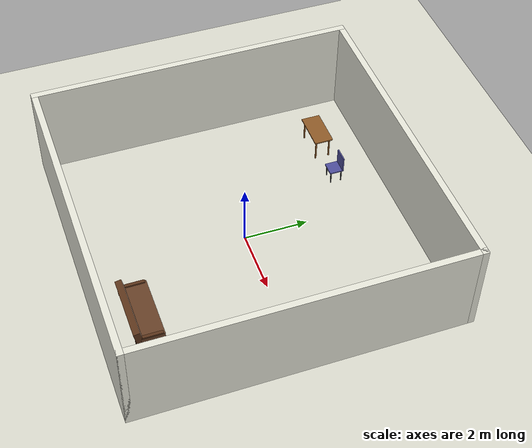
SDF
<sdf version="1.9">
 <world name="collision_test">
  <physics name="default_physics" type="ode">
   <max_step_size>0.004</max_step_size>
   <real_time_factor>1.0</real_time_factor>
   <real_time_update_rate>250</real_time_update_rate>
  </physics>
  <plugin filename="gz-sim-physics-system" name="gz::sim::systems::Physics"/>
  <plugin filename="gz-sim-user-commands-system" name="gz::sim::systems::UserCommands"/>
  <plugin filename="gz-sim-scene-broadcaster-system" name="gz::sim::systems::SceneBroadcaster"/>
  <plugin filename="gz-sim-contact-system" name="gz::sim::systems::Contact"/>
  <plugin filename="libgz-sim-sensors-system.so" name="gz::sim::systems::Sensors">
   <render_engine>ogre2</render_engine>
  </plugin>
  <light type="directional" name="sun">
   <pose>0 0 10 0 0 0</pose>
   <diffuse>0.9 0.9 0.9 1</diffuse>
   <specular>0.3 0.3 0.3 1</specular>
   <direction>-0.5 0.5 -1.0</direction>
  </light>
  <light type="point" name="room_light">
   <pose>0 0 2.8 0 0 0</pose>
   <diffuse>0.8 0.8 0.8 1</diffuse>
   <specular>0.1 0.1 0.1 1</specular>
   <attenuation>
    <range>15</range>
    <constant>0.5</constant>
    <linear>0.05</linear>
    <quadratic>0.01</quadratic>
   </attenuation>
  </light>
  <model name="ground_plane">
   <static>true</static>
   <link name="link">
    <collision name="collision">
     <geometry><plane><normal>0 0 1</normal><size>15 15</size></plane></geometry>
    </collision>
    <visual name="visual">
     <geometry><plane><normal>0 0 1</normal><size>15 15</size></plane></geometry>
     <material><ambient>0.85 0.85 0.8 1</ambient><diffuse>0.85 0.85 0.8 1</diffuse></material>
    </visual>
   </link>
  </model>
  <model name="wall_north">
   <static>true</static>
   <pose>0 5.0 1.5 0 0 0</pose>
   <link name="link">
    <collision name="collision"><geometry><box><size>10.2 0.2 3.0</size></box></geometry></collision>
    <visual name="visual">
     <geometry><box><size>10.2 0.2 3.0</size></box></geometry>
     <material><ambient>0.9 0.9 0.85 1</ambient><diffuse>0.9 0.9 0.85 1</diffuse></material>
    </visual>
   </link>
  </model>
  <model name="wall_south">
   <static>true</static>
   <pose>0 -5.0 1.5 0 0 0</pose>
   <link name="link">
    <collision name="collision"><geometry><box><size>10.2 0.2 3.0</size></box></geometry></collision>
    <visual name="visual">
     <geometry><box><size>10.2 0.2 3.0</size></box></geometry>
     <material><ambient>0.9 0.9 0.85 1</ambient><diffuse>0.9 0.9 0.85 1</diffuse></material>
    </visual>
   </link>
  </model>
  <model name="wall_east">
   <static>true</static>
   <pose>5.0 0 1.5 0 0 0</pose>
   <link name="link">
    <collision name="collision"><geometry><box><size>0.2 10.2 3.0</size></box></geometry></collision>
    <visual name="visual">
     <geometry><box><size>0.2 10.2 3.0</size></box></geometry>
     <material><ambient>0.9 0.9 0.85 1</ambient><diffuse>0.9 0.9 0.85 1</diffuse></material>
    </visual>
   </link>
  </model>
  <model name="wall_west">
   <static>true</static>
   <pose>-5.0 0 1.5 0 0 0</pose>
   <link name="link">
    <collision name="collision"><geometry><box><size>0.2 10.2 3.0</size></box></geometry></collision>
    <visual name="visual">
     <geometry><box><size>0.2 10.2 3.0</size></box></geometry>
     <material><ambient>0.9 0.9 0.85 1</ambient><diffuse>0.9 0.9 0.85 1</diffuse></material>
    </visual>
   </link>
  </model>
  <model name="table">
   <static>true</static>
   <pose>-3.0 3.5 0 0 0 0</pose>
   <link name="link">
    <collision name="top_collision">
     <pose>0 0 0.74 0 0 0</pose>
     <geometry><box><size>1.2 0.6 0.04</size></box></geometry>
    </collision>
    <visual name="top_visual">
     <pose>0 0 0.74 0 0 0</pose>
     <geometry><box><size>1.2 0.6 0.04</size></box></geometry>
     <material><ambient>0.55 0.35 0.15 1</ambient><diffuse>0.55 0.35 0.15 1</diffuse></material>
    </visual>
    <collision name="leg1_col">
     <pose>-0.5 -0.22 0.36 0 0 0</pose>
     <geometry><box><size>0.04 0.04 0.72</size></box></geometry>
    </collision>
    <visual name="leg1_vis">
     <pose>-0.5 -0.22 0.36 0 0 0</pose>
     <geometry><box><size>0.04 0.04 0.72</size></box></geometry>
     <material><ambient>0.55 0.35 0.15 1</ambient><diffuse>0.55 0.35 0.15 1</diffuse></material>
    </visual>
    <collision name="leg2_col">
     <pose>0.5 -0.22 0.36 0 0 0</pose>
     <geometry><box><size>0.04 0.04 0.72</size></box></geometry>
    </collision>
    <visual name="leg2_vis">
     <pose>0.5 -0.22 0.36 0 0 0</pose>
     <geometry><box><size>0.04 0.04 0.72</size></box></geometry>
     <material><ambient>0.55 0.35 0.15 1</ambient><diffuse>0.55 0.35 0.15 1</diffuse></material>
    </visual>
    <collision name="leg3_col">
     <pose>-0.5 0.22 0.36 0 0 0</pose>
     <geometry><box><size>0.04 0.04 0.72</size></box></geometry>
    </collision>
    <visual name="leg3_vis">
     <pose>-0.5 0.22 0.36 0 0 0</pose>
     <geometry><box><size>0.04 0.04 0.72</size></box></geometry>
     <material><ambient>0.55 0.35 0.15 1</ambient><diffuse>0.55 0.35 0.15 1</diffuse></material>
    </visual>
    <collision name="leg4_col">
     <pose>0.5 0.22 0.36 0 0 0</pose>
     <geometry><box><size>0.04 0.04 0.72</size></box></geometry>
    </collision>
    <visual name="leg4_vis">
     <pose>0.5 0.22 0.36 0 0 0</pose>
     <geometry><box><size>0.04 0.04 0.72</size></box></geometry>
     <material><ambient>0.55 0.35 0.15 1</ambient><diffuse>0.55 0.35 0.15 1</diffuse></material>
    </visual>
   </link>
  </model>
  <model name="chair">
   <static>true</static>
   <pose>-1.5 3.5 0 0 0 -1.5708</pose>
   <link name="link">
    <collision name="seat_col">
     <pose>0 0 0.44 0 0 0</pose>
     <geometry><box><size>0.45 0.45 0.04</size></box></geometry>
    </collision>
    <visual name="seat_vis">
     <pose>0 0 0.44 0 0 0</pose>
     <geometry><box><size>0.45 0.45 0.04</size></box></geometry>
     <material><ambient>0.3 0.3 0.6 1</ambient><diffuse>0.3 0.3 0.6 1</diffuse></material>
    </visual>
    <collision name="back_col">
     <pose>-0.2 0 0.7 0 0 0</pose>
     <geometry><box><size>0.04 0.45 0.5</size></box></geometry>
    </collision>
    <visual name="back_vis">
     <pose>-0.2 0 0.7 0 0 0</pose>
     <geometry><box><size>0.04 0.45 0.5</size></box></geometry>
     <material><ambient>0.3 0.3 0.6 1</ambient><diffuse>0.3 0.3 0.6 1</diffuse></material>
    </visual>
    <collision name="cl1">
     <pose>-0.17 -0.17 0.21 0 0 0</pose>
     <geometry><box><size>0.03 0.03 0.42</size></box></geometry>
    </collision>
    <visual name="cl1v">
     <pose>-0.17 -0.17 0.21 0 0 0</pose>
     <geometry><box><size>0.03 0.03 0.42</size></box></geometry>
     <material><ambient>0.25 0.25 0.25 1</ambient><diffuse>0.25 0.25 0.25 1</diffuse></material>
    </visual>
    <collision name="cl2">
     <pose>0.17 -0.17 0.21 0 0 0</pose>
     <geometry><box><size>0.03 0.03 0.42</size></box></geometry>
    </collision>
    <visual name="cl2v">
     <pose>0.17 -0.17 0.21 0 0 0</pose>
     <geometry><box><size>0.03 0.03 0.42</size></box></geometry>
     <material><ambient>0.25 0.25 0.25 1</ambient><diffuse>0.25 0.25 0.25 1</diffuse></material>
    </visual>
    <collision name="cl3">
     <pose>-0.17 0.17 0.21 0 0 0</pose>
     <geometry><box><size>0.03 0.03 0.42</size></box></geometry>
    </collision>
    <visual name="cl3v">
     <pose>-0.17 0.17 0.21 0 0 0</pose>
     <geometry><box><size>0.03 0.03 0.42</size></box></geometry>
     <material><ambient>0.25 0.25 0.25 1</ambient><diffuse>0.25 0.25 0.25 1</diffuse></material>
    </visual>
    <collision name="cl4">
     <pose>0.17 0.17 0.21 0 0 0</pose>
     <geometry><box><size>0.03 0.03 0.42</size></box></geometry>
    </collision>
    <visual name="cl4v">
     <pose>0.17 0.17 0.21 0 0 0</pose>
     <geometry><box><size>0.03 0.03 0.42</size></box></geometry>
     <material><ambient>0.25 0.25 0.25 1</ambient><diffuse>0.25 0.25 0.25 1</diffuse></material>
    </visual>
   </link>
  </model>
  <model name="sofa">
   <static>true</static>
   <pose>2.0 -3.8 0 0 0 0</pose>
   <link name="link">
    <collision name="seat_col">
     <pose>0 0.1 0.25 0 0 0</pose>
     <geometry><box><size>2.0 0.7 0.5</size></box></geometry>
    </collision>
    <visual name="seat_vis">
     <pose>0 0.1 0.25 0 0 0</pose>
     <geometry><box><size>2.0 0.7 0.5</size></box></geometry>
     <material><ambient>0.4 0.25 0.15 1</ambient><diffuse>0.4 0.25 0.15 1</diffuse></material>
    </visual>
    <collision name="back_col">
     <pose>0 -0.3 0.5 0.2 0 0</pose>
     <geometry><box><size>2.0 0.2 0.6</size></box></geometry>
    </collision>
    <visual name="back_vis">
     <pose>0 -0.3 0.5 0.2 0 0</pose>
     <geometry><box><size>2.0 0.2 0.6</size></box></geometry>
     <material><ambient>0.35 0.2 0.1 1</ambient><diffuse>0.35 0.2 0.1 1</diffuse></material>
    </visual>
    <collision name="arm_l_col">
     <pose>-0.95 0 0.4 0 0 0</pose>
     <geometry><box><size>0.1 0.8 0.3</size></box></geometry>
    </collision>
    <visual name="arm_l_vis">
     <pose>-0.95 0 0.4 0 0 0</pose>
     <geometry><box><size>0.1 0.8 0.3</size></box></geometry>
     <material><ambient>0.35 0.2 0.1 1</ambient><diffuse>0.35 0.2 0.1 1</diffuse></material>
    </visual>
    <collision name="arm_r_col">
     <pose>0.95 0 0.4 0 0 0</pose>
     <geometry><box><size>0.1 0.8 0.3</size></box></geometry>
    </collision>
    <visual name="arm_r_vis">
     <pose>0.95 0 0.4 0 0 0</pose>
     <geometry><box><size>0.1 0.8 0.3</size></box></geometry>
     <material><ambient>0.35 0.2 0.1 1</ambient><diffuse>0.35 0.2 0.1 1</diffuse></material>
    </visual>
   </link>
  </model>
 </world>
</sdf>
